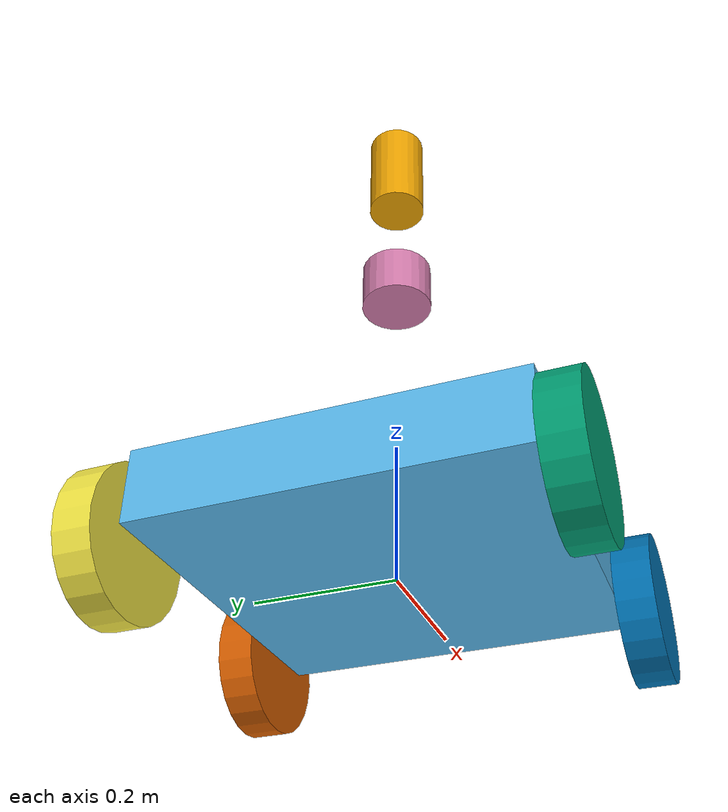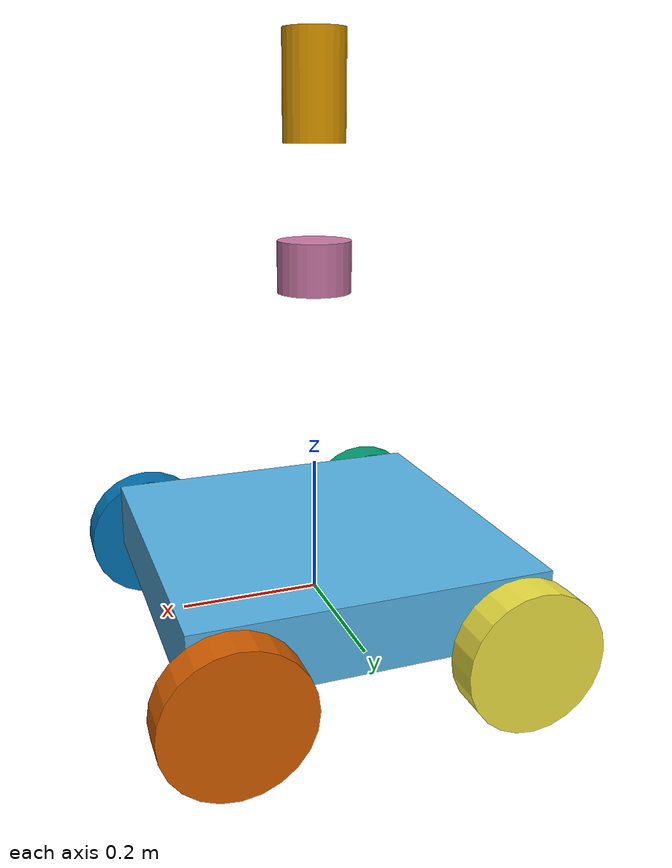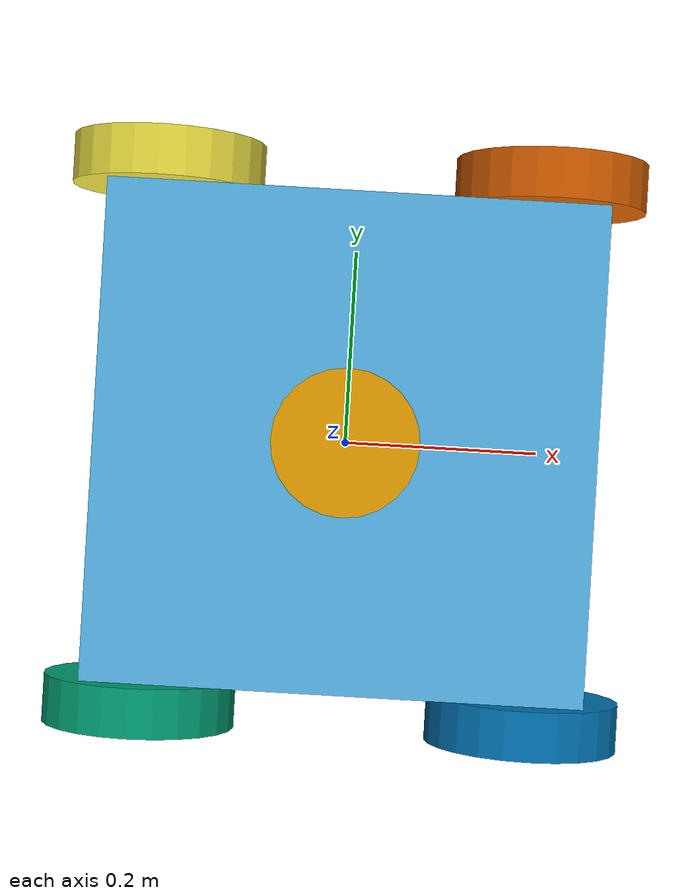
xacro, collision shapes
<?xml version="1.0"?>
<robot xmlns:xacro="http://www.ros.org/wiki/xacro" name="example">
  <xacro:arg name="gpu" default="false"/>
  <xacro:property name="gpu" value="$(arg gpu)" />
  <xacro:arg name="organize_cloud" default="false"/>
  <xacro:property name="organize_cloud" value="$(arg organize_cloud)" />

  <!-- Base Footprint -->
  <link name="base_footprint" />

  <!-- Base Link -->
  <joint name="footprint" type="fixed">
    <parent link="base_footprint" />
    <child link="base_link" />
    <origin xyz="0 0 0.05" rpy="0 0 0" />
  </joint>
  <link name="base_link">
    <visual>
      <geometry>
        <box size="0.5 0.5 0.1" />
      </geometry>
    </visual>
    <collision>
      <geometry>
        <box size="0.5 0.5 0.1" />
      </geometry>
    </collision>
    <inertial>
      <origin xyz="0 0 0"/>
      <mass value="10"/>
      <inertia ixx="3.0" ixy="0.0" ixz="0.0"
               iyy="3.0" iyz="0.0"
               izz="3.0" />
    </inertial>
  </link>

  <!-- Left Wheel 1 -->
  <link name="left_wheel_1">
    <visual>
      <geometry>
        <cylinder radius="0.1" length="0.05" />
      </geometry>
    </visual>
    <collision>
      <geometry>
        <cylinder radius="0.1" length="0.05" />
      </geometry>
    </collision>
    <inertial>
      <origin xyz="0 0 0" />
      <mass value="0.5" />
      <inertia ixx="0.01" ixy="0" ixz="0"
               iyy="0.01" iyz="0"
               izz="0.01" />
    </inertial>
  </link>

  <!-- Right Wheel 1 -->
  <link name="right_wheel_1">
    <visual>
      <geometry>
        <cylinder radius="0.1" length="0.05" />
      </geometry>
    </visual>
    <collision>
      <geometry>
        <cylinder radius="0.1" length="0.05" />
      </geometry>
    </collision>
    <inertial>
      <origin xyz="0 0 0" />
      <mass value="0.5" />
      <inertia ixx="0.01" ixy="0" ixz="0"
               iyy="0.01" iyz="0"
               izz="0.01" />
    </inertial>
  </link>

  <!-- Left Wheel Joint 1 -->
  <joint name="left_wheel_joint_1" type="revolute">
    <parent link="base_link" />
    <child link="left_wheel_1" />
    <origin xyz="-0.2 -0.28 -0.05" rpy="1.5708 0 0" />
    <axis xyz="0 0 -1" />
    <limit lower="-3.1416" upper="1000" effort="100" velocity="1.0" />
  </joint>

  <!-- Right Wheel Joint 1 -->
  <joint name="right_wheel_joint_1" type="revolute">
    <parent link="base_link" />
    <child link="right_wheel_1" />
    <origin xyz="-0.2 0.28 -0.05" rpy="1.5708 0 0" />
    <axis xyz="0 0 1" />
    <limit lower="-3.1416" upper="1000" effort="100" velocity="0.1" />
  </joint>

  <!-- Left Wheel 2 -->
  <link name="left_wheel_2">
    <visual>
      <geometry>
        <cylinder radius="0.1" length="0.05" />
      </geometry>
    </visual>
    <collision>
      <geometry>
        <cylinder radius="0.1" length="0.05" />
      </geometry>
    </collision>
    <inertial>
      <origin xyz="0 0 0" />
      <mass value="0.5" />
      <inertia ixx="0.01" ixy="0" ixz="0"
               iyy="0.01" iyz="0"
               izz="0.01" />
    </inertial>
  </link>

  <!-- Right Wheel 2 -->
  <link name="right_wheel_2">
    <visual>
      <geometry>
        <cylinder radius="0.1" length="0.05" />
      </geometry>
    </visual>
    <collision>
      <geometry>
        <cylinder radius="0.1" length="0.05" />
      </geometry>
    </collision>
    <inertial>
      <origin xyz="0 0 0" />
      <mass value="0.5" />
      <inertia ixx="0.01" ixy="0" ixz="0"
               iyy="0.01" iyz="0"
               izz="0.01" />
    </inertial>
  </link>

  <!-- Left Wheel Joint 2 -->
  <joint name="left_wheel_joint_2" type="revolute">
    <parent link="base_link" />
    <child link="left_wheel_2" />
    <origin xyz="0.2 -0.28 -0.05" rpy="1.5708 0 0" />
    <axis xyz="0 0 -1" />
    <limit lower="-3.1416" upper="1000" effort="100" velocity="1.0" />
  </joint>

  <!-- Right Wheel Joint 2 -->
  <joint name="right_wheel_joint_2" type="revolute">
    <parent link="base_link" />
    <child link="right_wheel_2" />
    <origin xyz="0.2 0.28 -0.05" rpy="1.5708 0 0" />
    <axis xyz="0 0 1" />
    <limit lower="-3.1416" upper="1000" effort="100" velocity="0.1" />
  </joint>

  <xacro:include filename="$(find velodyne_description)/urdf/VLP-16.urdf.xacro"/>
  <xacro:VLP-16 parent="base_link" name="velodyne" topic="/velodyne_points" organize_cloud="${organize_cloud}" hz="10" samples="440" gpu="${gpu}">
    <origin xyz="0 0 0.4" rpy="0 0 0" />
  </xacro:VLP-16>

  <xacro:include filename="$(find velodyne_description)/urdf/HDL-32E.urdf.xacro"/>
  <xacro:HDL-32E parent="base_link" name="velodyne2" topic="/velodyne_points2" organize_cloud="${organize_cloud}" hz="10" samples="220" gpu="${gpu}">
    <origin xyz="0 0 0.6" rpy="0 0 0" />
  </xacro:HDL-32E>

</robot>

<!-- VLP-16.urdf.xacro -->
<robot xmlns:xacro="http://www.ros.org/wiki/xacro" name="VLP-16">
  <xacro:property name="M_PI" value="3.1415926535897931" />
  <xacro:macro name="VLP-16" params="*origin parent:=base_link name:=velodyne topic:=/velodyne_points organize_cloud:=false hz:=1 lasers:=16 samples:=1000 collision_range:=0.3 min_range:=0.9 max_range:=50.0 noise:=0.008 min_angle:=-${M_PI} max_angle:=${M_PI} gpu:=false">

    <joint name="${name}_base_mount_joint" type="fixed">
      <xacro:insert_block name="origin" />
      <parent link="${parent}"/>
      <child link="${name}_base_link"/>
    </joint>

    <link name="${name}_base_link">
      <inertial>
        <mass value="0.83"/>
        <origin xyz="0 0 0.03585"/>
        <inertia ixx="${(0.83 * (3.0*0.0516*0.0516 + 0.0717*0.0717)) / 12.0}" ixy="0" ixz="0"
          iyy="${(0.83 * (3.0*0.0516*0.0516 + 0.0717*0.0717)) / 12.0}" iyz="0"
          izz="${0.5 * 0.83 * (0.0516*0.0516)}"/>
      </inertial>
      <visual>
        <geometry>
          <mesh filename="package://velodyne_description/meshes/VLP16_base_1.dae" />
        </geometry>
      </visual>
      <visual>
        <geometry>
          <mesh filename="package://velodyne_description/meshes/VLP16_base_2.dae" />
        </geometry>
      </visual>
      <collision>
        <origin rpy="0 0 0" xyz="0 0 0.03585"/>
        <geometry>
          <cylinder radius="0.0516" length="0.0717"/>
        </geometry>
      </collision>
    </link>

    <joint name="${name}_base_scan_joint" type="fixed" >
      <origin xyz="0 0 0.0377" rpy="0 0 0" />
      <parent link="${name}_base_link" />
      <child link="${name}"/>
    </joint>

    <link name="${name}">
      <inertial>
        <mass value="0.01"/>
        <origin xyz="0 0 0"/>
        <inertia ixx="1e-7" ixy="0" ixz="0" iyy="1e-7" iyz="0" izz="1e-7"/>
      </inertial>
      <visual>
        <origin xyz="0 0 -0.0377" />
        <geometry>
          <mesh filename="package://velodyne_description/meshes/VLP16_scan.dae" />
        </geometry>
      </visual>
      <collision>
        <geometry>
          <sphere radius="0"/>
        </geometry>
      </collision>
    </link>

    <!-- Gazebo requires the velodyne_gazebo_plugins package -->
    <gazebo reference="${name}">
      <xacro:if value="${gpu}">
        <sensor type="gpu_ray" name="${name}-VLP16">
          <pose>0 0 0 0 0 0</pose>
          <visualize>false</visualize>
          <update_rate>${hz}</update_rate>
          <ray>
            <scan>
              <horizontal>
                <samples>${samples}</samples>
                <resolution>1</resolution>
                <min_angle>${min_angle}</min_angle>
                <max_angle>${max_angle}</max_angle>
              </horizontal>
              <vertical>
                <samples>${lasers}</samples>
                <resolution>1</resolution>
                <min_angle>-${15.0*M_PI/180.0}</min_angle>
                <max_angle> ${15.0*M_PI/180.0}</max_angle>
              </vertical>
            </scan>
            <range>
              <min>${collision_range}</min>
              <max>${max_range+1}</max>
              <resolution>0.001</resolution>
            </range>
            <noise>
              <type>gaussian</type>
              <mean>0.0</mean>
              <stddev>0.0</stddev>
            </noise>
          </ray>
          <plugin name="gazebo_ros_laser_controller" filename="libgazebo_ros_velodyne_gpu_laser.so">
            <topicName>${topic}</topicName>
            <frameName>${name}</frameName>
            <organize_cloud>${organize_cloud}</organize_cloud>
            <min_range>${min_range}</min_range>
            <max_range>${max_range}</max_range>
            <gaussianNoise>${noise}</gaussianNoise>
          </plugin>
        </sensor>
      </xacro:if>
      <xacro:unless value="${gpu}">
        <sensor type="ray" name="${name}-VLP16">
          <pose>0 0 0 0 0 0</pose>
          <visualize>false</visualize>
          <update_rate>${hz}</update_rate>
          <ray>
            <scan>
              <horizontal>
                <samples>${samples}</samples>
                <resolution>1</resolution>
                <min_angle>${min_angle}</min_angle>
                <max_angle>${max_angle}</max_angle>
              </horizontal>
              <vertical>
                <samples>${lasers}</samples>
                <resolution>1</resolution>
                <min_angle>-${15.0*M_PI/180.0}</min_angle>
                <max_angle> ${15.0*M_PI/180.0}</max_angle>
              </vertical>
            </scan>
            <range>
              <min>${collision_range}</min>
              <max>${max_range+1}</max>
              <resolution>0.001</resolution>
            </range>
            <noise>
              <type>gaussian</type>
              <mean>0.0</mean>
              <stddev>0.0</stddev>
            </noise>
          </ray>
          <plugin name="gazebo_ros_laser_controller" filename="libgazebo_ros_velodyne_laser.so">
            <topicName>${topic}</topicName>
            <frameName>${name}</frameName>
            <organize_cloud>${organize_cloud}</organize_cloud>
            <min_range>${min_range}</min_range>
            <max_range>${max_range}</max_range>
            <gaussianNoise>${noise}</gaussianNoise>
          </plugin>
        </sensor>
      </xacro:unless>
    </gazebo>

  </xacro:macro>
</robot>

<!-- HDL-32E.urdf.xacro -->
<robot xmlns:xacro="http://www.ros.org/wiki/xacro" name="HDL-32E">
  <xacro:property name="M_PI" value="3.1415926535897931" />
  <xacro:macro name="HDL-32E" params="*origin parent:=base_link name:=velodyne topic:=/velodyne_points organize_cloud:=false hz:=1 lasers:=32 samples:=2187 collision_range:=0.3 min_range:=0.9 max_range:=50.0 noise:=0.008 min_angle:=-${M_PI} max_angle:=${M_PI} gpu:=false">

    <joint name="${name}_base_mount_joint" type="fixed">
      <xacro:insert_block name="origin" />
      <parent link="${parent}"/>
      <child link="${name}_base_link"/>
    </joint>

    <link name="${name}_base_link">
      <inertial>
        <mass value="1.0"/>
        <origin xyz="0 0 0.07212"/>
        <inertia ixx="${(1.0 * (3.0*0.04267*0.04267 + 0.14424*0.14424)) / 12.0}" ixy="0" ixz="0"
          iyy="${(1.0 * (3.0*0.04267*0.04267 + 0.14424*0.14424)) / 12.0}" iyz="0"
          izz="${0.5 * 1.0 * (0.04267*0.04267)}"/>
      </inertial>
      <visual>
        <geometry>
          <mesh filename="package://velodyne_description/meshes/HDL32E_base.dae" />
        </geometry>
      </visual>
      <collision>
        <origin rpy="0 0 0" xyz="0 0 0.07212"/>
        <geometry>
          <cylinder radius="0.04267" length="0.14424"/>
        </geometry>
      </collision>
    </link>

    <joint name="${name}_base_scan_joint" type="fixed" >
      <origin xyz="0 0 0.09081" rpy="0 0 0" />
      <parent link="${name}_base_link" />
      <child link="${name}"/>
    </joint>

    <link name="${name}">
      <inertial>
        <mass value="0.01"/>
        <origin xyz="0 0 0"/>
        <inertia ixx="1e-7" ixy="0" ixz="0" iyy="1e-7" iyz="0" izz="1e-7"/>
      </inertial>
      <visual>
        <origin xyz="0 0 -0.09081" rpy="0 0 0" />
        <geometry>
          <mesh filename="package://velodyne_description/meshes/HDL32E_scan.dae" />
        </geometry>
      </visual>
      <collision>
        <geometry>
          <sphere radius="0"/>
        </geometry>
      </collision>
    </link>

    <!-- Gazebo requires the velodyne_gazebo_plugins package -->
    <gazebo reference="${name}">
      <xacro:if value="${gpu}">
        <sensor type="gpu_ray" name="${name}-HDL32E">
          <pose>0 0 0 0 0 0</pose>
          <visualize>false</visualize>
          <update_rate>${hz}</update_rate>
          <ray>
            <scan>
              <horizontal>
                <samples>${samples}</samples>
                <resolution>1</resolution>
                <min_angle>${min_angle}</min_angle>
                <max_angle>${max_angle}</max_angle>
              </horizontal>
              <vertical>
                <samples>${lasers}</samples>
                <resolution>1</resolution>
                <min_angle>-${30.67*M_PI/180.0}</min_angle>
                <max_angle> ${10.67*M_PI/180.0}</max_angle>
              </vertical>
            </scan>
            <range>
              <min>${collision_range}</min>
              <max>${max_range+1}</max>
              <resolution>0.001</resolution>
            </range>
            <noise>
              <type>gaussian</type>
              <mean>0.0</mean>
              <stddev>0.0</stddev>
            </noise>
          </ray>
          <plugin name="gazebo_ros_laser_controller" filename="libgazebo_ros_velodyne_gpu_laser.so">
            <topicName>${topic}</topicName>
            <frameName>${name}</frameName>
            <organize_cloud>${organize_cloud}</organize_cloud>
            <min_range>${min_range}</min_range>
            <max_range>${max_range}</max_range>
            <gaussianNoise>${noise}</gaussianNoise>
          </plugin>
        </sensor>
      </xacro:if>
      <xacro:unless value="${gpu}">
        <sensor type="ray" name="${name}-HDL32E">
          <pose>0 0 0 0 0 0</pose>
          <visualize>false</visualize>
          <update_rate>${hz}</update_rate>
          <ray>
            <scan>
              <horizontal>
                <samples>${samples}</samples>
                <resolution>1</resolution>
                <min_angle>${min_angle}</min_angle>
                <max_angle>${max_angle}</max_angle>
              </horizontal>
              <vertical>
                <samples>${lasers}</samples>
                <resolution>1</resolution>
                <min_angle>-${30.67*M_PI/180.0}</min_angle>
                <max_angle> ${10.67*M_PI/180.0}</max_angle>
              </vertical>
            </scan>
            <range>
              <min>${collision_range}</min>
              <max>${max_range+1}</max>
              <resolution>0.001</resolution>
            </range>
            <noise>
              <type>gaussian</type>
              <mean>0.0</mean>
              <stddev>0.0</stddev>
            </noise>
          </ray>
          <plugin name="gazebo_ros_laser_controller" filename="libgazebo_ros_velodyne_laser.so">
            <topicName>${topic}</topicName>
            <frameName>${name}</frameName>
            <organize_cloud>${organize_cloud}</organize_cloud>
            <min_range>${min_range}</min_range>
            <max_range>${max_range}</max_range>
            <gaussianNoise>${noise}</gaussianNoise>
          </plugin>
        </sensor>
      </xacro:unless>
    </gazebo>

  </xacro:macro>
</robot>
